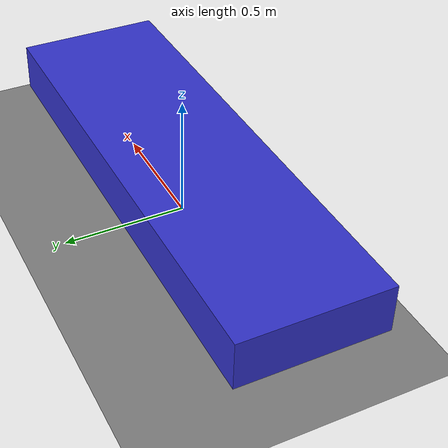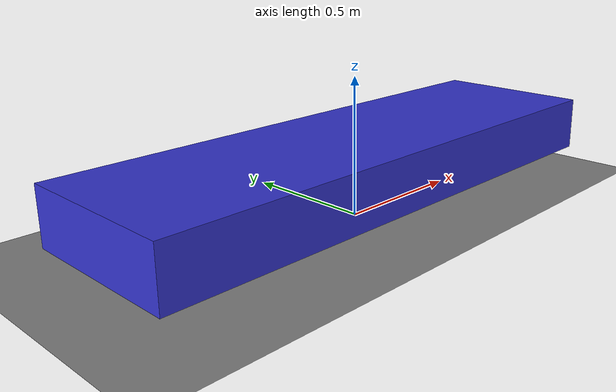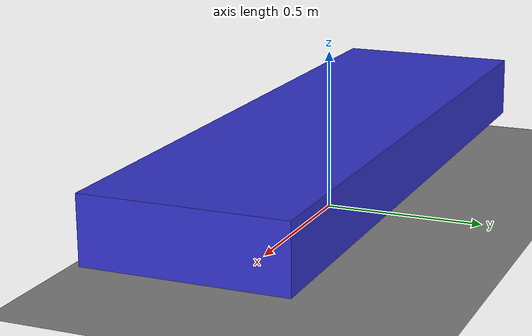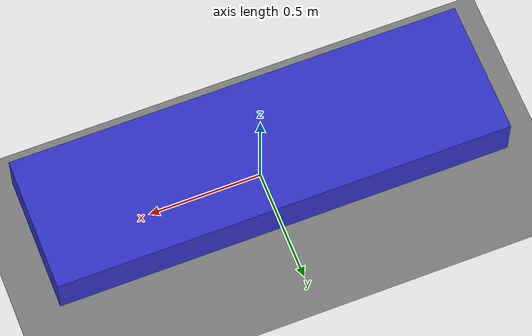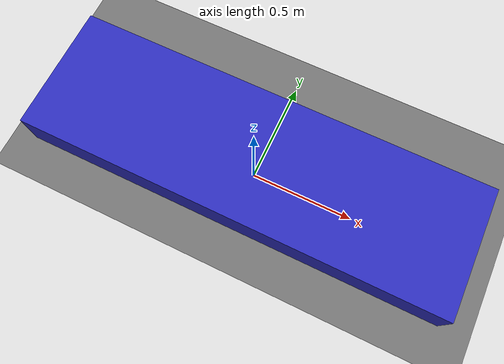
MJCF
<mujoco>

    <option gravity="0 0 -9.81" timestep="0.002"/>

    <worldbody>

        <!-- ground -->
        <geom type="plane" size="10 10 0.1"/>

        <!-- moving platform -->
        <body name="platform" pos="0 0 0.2">

            <!-- ONLY x translation -->
            <joint
                name="platform_slide"
                type="slide"
                axis="1 0 0"
                damping="1"/>

            <geom
                type="box"
                size="1 0.3 0.1"
                rgba="0.2 0.2 0.8 1"/>

        </body>

    </worldbody>

</mujoco>
